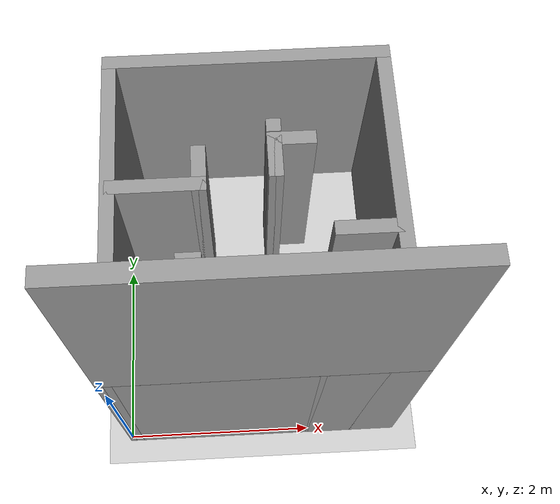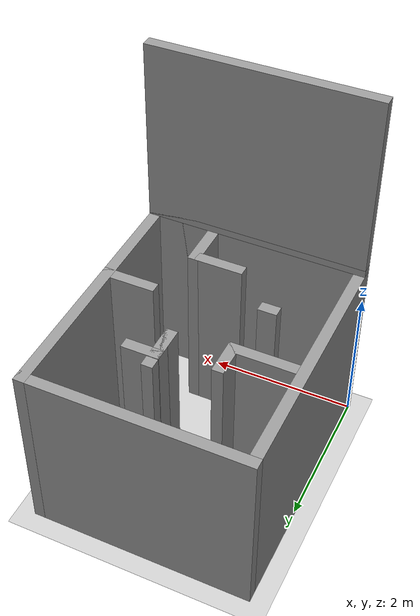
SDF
<sdf version="1.7">
 <world name="default">
  <light name="sun" type="directional">
   <pose>0 0 10 0 -0 0</pose>
   <diffuse>0.8 0.8 0.8 1</diffuse>
   <specular>0.2 0.2 0.2 1</specular>
   <attenuation>
    <range>1000</range>
    <constant>0.9</constant>
    <linear>0.01</linear>
    <quadratic>0.001</quadratic>
   </attenuation>
   <direction>-0.5 0.1 -0.9</direction>
   <spot><inner_angle>0</inner_angle><outer_angle>0</outer_angle><falloff>0</falloff></spot>
  </light>
  <model name="ground_plane">
   <static>1</static>
   <link name="link">
    <collision name="collision">
     <geometry><plane><normal>0 0 1</normal><size>100 100</size></plane></geometry>
     <surface>
      <contact><collide_bitmask>65535</collide_bitmask></contact>
      <friction><ode><mu>100</mu><mu2>50</mu2></ode></friction>
     </surface>
    </collision>
    <visual name="visual">
     <cast_shadows>0</cast_shadows>
     <geometry><plane><normal>0 0 1</normal><size>100 100</size></plane></geometry>
     <material>
      <script><uri>file://media/materials/scripts/gazebo.material</uri><name>Gazebo/Grey</name></script>
     </material>
    </visual>
   </link>
  </model>
  <gravity>0 0 -9.8</gravity>
  <magnetic_field>6e-06 2.3e-05 -4.2e-05</magnetic_field>
  <atmosphere type="adiabatic"/>
  <physics type="ode">
   <max_step_size>0.001</max_step_size>
   <real_time_factor>1</real_time_factor>
   <real_time_update_rate>1000</real_time_update_rate>
  </physics>
  <scene><ambient>0.4 0.4 0.4 1</ambient><background>0.7 0.7 0.7 1</background><shadows>1</shadows></scene>
  <spherical_coordinates>
   <surface_model>EARTH_WGS84</surface_model>
   <latitude_deg>0</latitude_deg>
   <longitude_deg>0</longitude_deg>
   <elevation>0</elevation>
   <heading_deg>0</heading_deg>
  </spherical_coordinates>
  <model name="Untitled">
   <pose>2.05547 1.75365 0 0 -0 0</pose>
   <link name="Floor_0">
    <collision name="Floor_0_Collision">
     <geometry><box><size>3 0.15 0.1</size></box></geometry>
     <pose>0 0 0.05 0 -0 0</pose>
    </collision>
    <visual name="Floor_0_Visual">
     <pose>0 0 0.05 0 -0 0</pose>
     <geometry><box><size>3 0.15 0.1</size></box></geometry>
     <material>
      <script><uri>file://media/materials/scripts/gazebo.material</uri><name>Gazebo/Grey</name></script>
      <ambient>1 1 1 1</ambient>
     </material>
     <meta><layer>1</layer></meta>
    </visual>
    <pose>-0.5725 -1.7225 2.5 0 -0 0</pose>
   </link>
   <link name="Wall_0">
    <collision name="Wall_0_Collision">
     <geometry><box><size>3 0.15 2.5</size></box></geometry>
     <pose>0 0 1.25 0 -0 0</pose>
    </collision>
    <visual name="Wall_0_Visual">
     <pose>0 0 1.25 0 -0 0</pose>
     <geometry><box><size>3 0.15 2.5</size></box></geometry>
     <material>
      <script><uri>file://media/materials/scripts/gazebo.material</uri><name>Gazebo/Grey</name></script>
      <ambient>1 1 1 1</ambient>
     </material>
     <meta><layer>0</layer></meta>
    </visual>
    <pose>-0.5725 -1.7225 0 0 -0 0</pose>
   </link>
   <link name="Wall_11">
    <collision name="Wall_11_Collision">
     <geometry><box><size>0.75 0.15 2.5</size></box></geometry>
     <pose>0 0 1.25 0 -0 0</pose>
    </collision>
    <visual name="Wall_11_Visual">
     <pose>0 0 1.25 0 -0 0</pose>
     <geometry><box><size>0.75 0.15 2.5</size></box></geometry>
     <material>
      <script><uri>file://media/materials/scripts/gazebo.material</uri><name>Gazebo/Grey</name></script>
      <ambient>1 1 1 1</ambient>
     </material>
     <meta><layer>0</layer></meta>
    </visual>
    <pose>0.0025 -1.4225 0 0 -0 1.5708</pose>
   </link>
   <link name="Wall_12">
    <collision name="Wall_12_Collision">
     <geometry><box><size>0.75 0.15 2.5</size></box></geometry>
     <pose>0 0 1.25 0 -0 0</pose>
    </collision>
    <visual name="Wall_12_Visual">
     <pose>0 0 1.25 0 -0 0</pose>
     <geometry><box><size>0.75 0.15 2.5</size></box></geometry>
     <material>
      <script><uri>file://media/materials/scripts/gazebo.material</uri><name>Gazebo/Grey</name></script>
      <ambient>1 1 1 1</ambient>
     </material>
     <meta><layer>0</layer></meta>
    </visual>
    <pose>-0.2975 -1.1225 0 0 -0 3.14159</pose>
   </link>
   <link name="Wall_14">
    <collision name="Wall_14_Collision">
     <geometry><box><size>1 0.15 2.5</size></box></geometry>
     <pose>0 0 1.25 0 -0 0</pose>
    </collision>
    <visual name="Wall_14_Visual">
     <pose>0 0 1.25 0 -0 0</pose>
     <geometry><box><size>1 0.15 2.5</size></box></geometry>
     <material>
      <script><uri>file://media/materials/scripts/gazebo.material</uri><name>Gazebo/Grey</name></script>
      <ambient>1 1 1 1</ambient>
     </material>
     <meta><layer>0</layer></meta>
    </visual>
    <pose>-1.5284 0.177551 0 0 -0 0</pose>
   </link>
   <link name="Wall_15">
    <collision name="Wall_15_Collision">
     <geometry><box><size>0.5 0.15 2.5</size></box></geometry>
     <pose>0 0 1.25 0 -0 0</pose>
    </collision>
    <visual name="Wall_15_Visual">
     <pose>0 0 1.25 0 -0 0</pose>
     <geometry><box><size>0.5 0.15 2.5</size></box></geometry>
     <material>
      <script><uri>file://media/materials/scripts/gazebo.material</uri><name>Gazebo/Grey</name></script>
      <ambient>1 1 1 1</ambient>
     </material>
     <meta><layer>0</layer></meta>
    </visual>
    <pose>-1.1034 0.352551 0 0 -0 1.5708</pose>
   </link>
   <link name="Wall_17">
    <collision name="Wall_17_Collision">
     <geometry><box><size>0.75 0.15 2.5</size></box></geometry>
     <pose>0 0 1.25 0 -0 0</pose>
    </collision>
    <visual name="Wall_17_Visual">
     <pose>0 0 1.25 0 -0 0</pose>
     <geometry><box><size>0.75 0.15 2.5</size></box></geometry>
     <material>
      <script><uri>file://media/materials/scripts/gazebo.material</uri><name>Gazebo/Grey</name></script>
      <ambient>1 1 1 1</ambient>
     </material>
     <meta><layer>0</layer></meta>
    </visual>
    <pose>0.552601 -0.362949 0 0 -0 3.14159</pose>
   </link>
   <link name="Wall_21">
    <collision name="Wall_21_Collision">
     <geometry><box><size>0.15 0.15 2.5</size></box></geometry>
     <pose>0 0 1.25 0 -0 0</pose>
    </collision>
    <visual name="Wall_21_Visual">
     <pose>0 0 1.25 0 -0 0</pose>
     <geometry><box><size>0.15 0.15 2.5</size></box></geometry>
     <material>
      <script><uri>file://media/materials/scripts/gazebo.material</uri><name>Gazebo/Grey</name></script>
      <ambient>1 1 1 1</ambient>
     </material>
     <meta><layer>0</layer></meta>
    </visual>
    <pose>-0.339377 0.799311 0 0 -0 0</pose>
   </link>
   <link name="Wall_28">
    <collision name="Wall_28_Collision">
     <geometry><box><size>0.5 0.15 2.5</size></box></geometry>
     <pose>0 0 1.25 0 -0 0</pose>
    </collision>
    <visual name="Wall_28_Visual">
     <pose>0 0 1.25 0 -0 0</pose>
     <geometry><box><size>0.5 0.15 2.5</size></box></geometry>
     <material>
      <script><uri>file://media/materials/scripts/gazebo.material</uri><name>Gazebo/Grey</name></script>
      <ambient>1 1 1 1</ambient>
     </material>
     <meta><layer>0</layer></meta>
    </visual>
    <pose>-0.341507 0.467718 0 0 -0 -1.5708</pose>
   </link>
   <link name="Wall_29">
    <collision name="Wall_29_Collision">
     <geometry><box><size>0.5 0.15 2.5</size></box></geometry>
     <pose>0 0 1.25 0 -0 0</pose>
    </collision>
    <visual name="Wall_29_Visual">
     <pose>0 0 1.25 0 -0 0</pose>
     <geometry><box><size>0.5 0.15 2.5</size></box></geometry>
     <material>
      <script><uri>file://media/materials/scripts/gazebo.material</uri><name>Gazebo/Grey</name></script>
      <ambient>1 1 1 1</ambient>
     </material>
     <meta><layer>0</layer></meta>
    </visual>
    <pose>-0.341507 0.467718 0 0 -0 1.5708</pose>
   </link>
   <link name="Wall_3">
    <collision name="Wall_3_Collision">
     <geometry><box><size>3 0.15 2.5</size></box></geometry>
     <pose>0 0 1.25 0 -0 0</pose>
    </collision>
    <visual name="Wall_3_Visual">
     <pose>0 0 1.25 0 -0 0</pose>
     <geometry><box><size>3 0.15 2.5</size></box></geometry>
     <material>
      <script><uri>file://media/materials/scripts/gazebo.material</uri><name>Gazebo/Grey</name></script>
      <ambient>1 1 1 1</ambient>
     </material>
     <meta><layer>1</layer></meta>
    </visual>
    <pose>-0.5725 -1.7225 2.5 0 -0 0</pose>
   </link>
   <link name="Wall_30">
    <collision name="Wall_30_Collision">
     <geometry><box><size>0.15 0.15 2.5</size></box></geometry>
     <pose>0 0 1.25 0 -0 0</pose>
    </collision>
    <visual name="Wall_30_Visual">
     <pose>0 0 1.25 0 -0 0</pose>
     <geometry><box><size>0.15 0.15 2.5</size></box></geometry>
     <material>
      <script><uri>file://media/materials/scripts/gazebo.material</uri><name>Gazebo/Grey</name></script>
      <ambient>1 1 1 1</ambient>
     </material>
     <meta><layer>0</layer></meta>
    </visual>
    <pose>-0.341507 0.642719 0 0 -0 0</pose>
   </link>
   <link name="Wall_31">
    <collision name="Wall_31_Collision">
     <geometry><box><size>0.5 0.15 2.5</size></box></geometry>
     <pose>0 0 1.25 0 -0 0</pose>
    </collision>
    <visual name="Wall_31_Visual">
     <pose>0 0 1.25 0 -0 0</pose>
     <geometry><box><size>0.5 0.15 2.5</size></box></geometry>
     <material>
      <script><uri>file://media/materials/scripts/gazebo.material</uri><name>Gazebo/Grey</name></script>
      <ambient>1 1 1 1</ambient>
     </material>
     <meta><layer>0</layer></meta>
    </visual>
    <pose>-0.166507 0.642719 0 0 -0 0</pose>
   </link>
   <link name="Wall_35">
    <collision name="Wall_35_Collision">
     <geometry><box><size>0.25 0.15 2.5</size></box></geometry>
     <pose>0 0 1.25 0 -0 0</pose>
    </collision>
    <visual name="Wall_35_Visual">
     <pose>0 0 1.25 0 -0 0</pose>
     <geometry><box><size>0.25 0.15 2.5</size></box></geometry>
     <material>
      <script><uri>file://media/materials/scripts/gazebo.material</uri><name>Gazebo/Grey</name></script>
      <ambient>1 1 1 1</ambient>
     </material>
     <meta><layer>0</layer></meta>
    </visual>
    <pose>-1.22607 -0.618433 0 0 -0 0</pose>
   </link>
   <link name="Wall_5">
    <collision name="Wall_5_Collision">
     <geometry><box><size>3.5 0.15 2.5</size></box></geometry>
     <pose>0 0 1.25 0 -0 0</pose>
    </collision>
    <visual name="Wall_5_Visual">
     <pose>0 0 1.25 0 -0 0</pose>
     <geometry><box><size>3.5 0.15 2.5</size></box></geometry>
     <material>
      <script><uri>file://media/materials/scripts/gazebo.material</uri><name>Gazebo/Grey</name></script>
      <ambient>1 1 1 1</ambient>
     </material>
     <meta><layer>0</layer></meta>
    </visual>
    <pose>0.8525 -0.0475 0 0 -0 1.5708</pose>
   </link>
   <link name="Wall_6">
    <collision name="Wall_6_Collision">
     <geometry><box><size>3 0.15 2.5</size></box></geometry>
     <pose>0 0 1.25 0 -0 0</pose>
    </collision>
    <visual name="Wall_6_Visual">
     <pose>0 0 1.25 0 -0 0</pose>
     <geometry><box><size>3 0.15 2.5</size></box></geometry>
     <material>
      <script><uri>file://media/materials/scripts/gazebo.material</uri><name>Gazebo/Grey</name></script>
      <ambient>1 1 1 1</ambient>
     </material>
     <meta><layer>0</layer></meta>
    </visual>
    <pose>-0.5725 1.6275 0 0 -0 3.14159</pose>
   </link>
   <link name="Wall_7">
    <collision name="Wall_7_Collision">
     <geometry><box><size>3.5 0.15 2.5</size></box></geometry>
     <pose>0 0 1.25 0 -0 0</pose>
    </collision>
    <visual name="Wall_7_Visual">
     <pose>0 0 1.25 0 -0 0</pose>
     <geometry><box><size>3.5 0.15 2.5</size></box></geometry>
     <material>
      <script><uri>file://media/materials/scripts/gazebo.material</uri><name>Gazebo/Grey</name></script>
      <ambient>1 1 1 1</ambient>
     </material>
     <meta><layer>0</layer></meta>
    </visual>
    <pose>-1.9975 -0.0475 0 0 -0 -1.5708</pose>
   </link>
   <link name="Wall_9">
    <collision name="Wall_9_Collision">
     <geometry><box><size>1 0.15 2.5</size></box></geometry>
     <pose>0 0 1.25 0 -0 0</pose>
    </collision>
    <visual name="Wall_9_Visual">
     <pose>0 0 1.25 0 -0 0</pose>
     <geometry><box><size>1 0.15 2.5</size></box></geometry>
     <material>
      <script><uri>file://media/materials/scripts/gazebo.material</uri><name>Gazebo/Grey</name></script>
      <ambient>1 1 1 1</ambient>
     </material>
     <meta><layer>0</layer></meta>
    </visual>
    <pose>0.4275 -1.7225 0 0 -0 3.14159</pose>
   </link>
   <static>1</static>
  </model>
  <light name="user_directional_light_0" type="directional">
   <pose>1.15377 1.25865 1 0 -0 0</pose>
   <diffuse>0.5 0.5 0.5 1</diffuse>
   <specular>0.1 0.1 0.1 1</specular>
   <direction>0.1 0.1 -0.9</direction>
   <attenuation>
    <range>20</range>
    <constant>0.5</constant>
    <linear>0.01</linear>
    <quadratic>0.001</quadratic>
   </attenuation>
  </light>
  <light name="user_directional_light_1" type="directional">
   <pose>-1.01256 1.99171 1 0 -0 0</pose>
   <diffuse>0.5 0.5 0.5 1</diffuse>
   <specular>0.1 0.1 0.1 1</specular>
   <direction>0.1 0.1 -0.9</direction>
   <attenuation>
    <range>20</range>
    <constant>0.5</constant>
    <linear>0.01</linear>
    <quadratic>0.001</quadratic>
   </attenuation>
  </light>
 </world>
</sdf>
